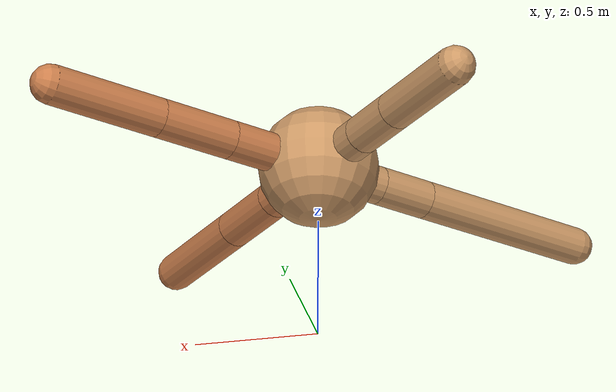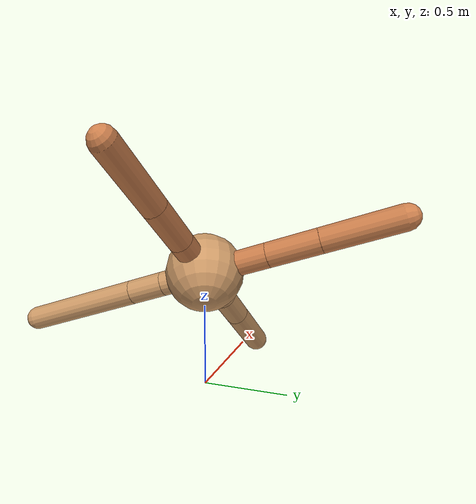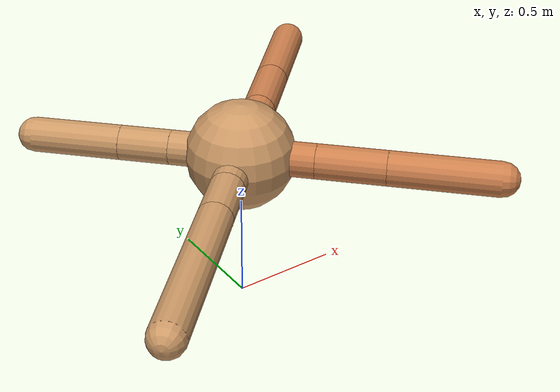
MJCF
<mujoco model="ant">
  <compiler angle="degree" coordinate="local" inertiafromgeom="true" />
  <option integrator="RK4" timestep="0.01" />
  <custom>
    <numeric data="0.0 0.0 0.55 1.0 0.0 0.0 0.0 0.0 1.0 0.0 -1.0 0.0 -1.0 0.0 1.0" name="init_qpos" />
  </custom>
  <default>
    <joint armature="1" damping="1" limited="true" />
    <geom conaffinity="0" condim="3" density="5.0" friction="1.5 0.1 0.1" margin="0.01" rgba="0.8 0.6 0.4 1" />
  </default>
  <worldbody>
    <body name="torso" pos="0 0 0.75">
      <geom name="torso_geom" pos="0 0 0" size="0.25" type="sphere" />

      <body name="front_left_leg" pos="0 0 0">
        <geom fromto="0.0 0.0 0.0 0.2986677477108287 0.2986677477108287 0.0" name="aux_1_geom" size="0.08" type="capsule" rgba=".8 .5 .3 1" />
        <body name="aux_1" pos="0.2986677477108287 0.2986677477108287 0.0">
          <joint axis="0 0 1" name="hip_1" pos="0.0 0.0 0.0" range="-40 40" type="hinge" />
          <geom fromto="0.0 0.0 0.0 0.23133125275517036 0.23133125275517036 0.0" name="left_leg_geom" size="0.08" type="capsule" rgba=".8 .5 .3 1" />
          <body pos="0.23133125275517036 0.23133125275517036 0.0" name="front_left_foot">
            <joint axis="-1 1 0" name="ankle_1" pos="0.0 0.0 0.0" range="30 100" type="hinge" />
            <geom fromto="0.0 0.0 0.0 0.33959258212739696 0.33959258212739696 0.0" name="left_ankle_geom" size="0.08" type="capsule" rgba=".8 .5 .3 1" />
          </body>
        </body>
      </body>
      <body name="front_right_leg" pos="0 0 0">
        <geom fromto="0.0 0.0 0.0 -0.22785066853829938 0.22785066853829938 0.0" name="aux_2_geom" size="0.08" type="capsule" />
        <body name="aux_2" pos="-0.22785066853829938 0.22785066853829938 0.0">
          <joint axis="0 0 1" name="hip_2" pos="0.0 0.0 0.0" range="-40 40" type="hinge" />
          <geom fromto="0.0 0.0 0.0 -0.16430478774644242 0.16430478774644242 0.0" name="right_leg_geom" size="0.08" type="capsule" />
          <body pos="-0.16430478774644242 0.16430478774644242 0.0" name="front_right_foot">
            <joint axis="1 1 0" name="ankle_2" pos="0.0 0.0 0.0" range="-100 -30" type="hinge" />
            <geom fromto="0.0 0.0 0.0 -0.2885105926016371 0.2885105926016371 0.0" name="right_ankle_geom" size="0.08" type="capsule" />
          </body>
        </body>
      </body>
      <body name="left_back_leg" pos="0 0 0">
        <geom fromto="0.0 0.0 0.0 -0.2063335944914095 -0.2063335944914095 0.0" name="aux_3_geom" size="0.08" type="capsule" />
        <body name="aux_3" pos="-0.2063335944914095 -0.2063335944914095 0.0">
          <joint axis="0 0 1" name="hip_3" pos="0.0 0.0 0.0" range="-40 40" type="hinge" />
          <geom fromto="0.0 0.0 0.0 -0.1648836929860753 -0.1648836929860753 0.0" name="back_leg_geom" size="0.08" type="capsule" />
          <body pos="-0.1648836929860753 -0.1648836929860753 0.0" name="left_back_foot">
            <joint axis="-1 1 0" name="ankle_3" pos="0.0 0.0 0.0" range="-100 -30" type="hinge" />
            <geom fromto="0.0 0.0 0.0 -0.5578662089636598 -0.5578662089636598 0.0" name="third_ankle_geom" size="0.08" type="capsule" />
          </body>
        </body>
      </body>
      <body name="right_back_leg" pos="0 0 0">
        <geom fromto="0.0 0.0 0.0 0.24066977150440982 -0.24066977150440982 0.0" name="aux_4_geom" size="0.08" type="capsule" rgba=".8 .5 .3 1" />
        <body name="aux_4" pos="0.24066977150440982 -0.24066977150440982 0.0">
          <joint axis="0 0 1" name="hip_4" pos="0.0 0.0 0.0" range="-40 40" type="hinge" />
          <geom fromto="0.0 0.0 0.0 0.22459389281861264 -0.22459389281861264 0.0" name="rightback_leg_geom" size="0.08" type="capsule" rgba=".8 .5 .3 1" />
          <body pos="0.22459389281861264 -0.22459389281861264 0.0" name="right_back_foot">
            <joint axis="1 1 0" name="ankle_4" pos="0.0 0.0 0.0" range="30 100" type="hinge" />
            <geom fromto="0.0 0.0 0.0 0.35208316536283635 -0.35208316536283635 0.0" name="fourth_ankle_geom" size="0.08" type="capsule" rgba=".8 .5 .3 1" />
          </body>
        </body>
      </body>
    </body>
  </worldbody>
  <actuator>
    <motor ctrllimited="true" ctrlrange="-1.0 1.0" joint="hip_4" gear="150" />
    <motor ctrllimited="true" ctrlrange="-1.0 1.0" joint="ankle_4" gear="150" />
    <motor ctrllimited="true" ctrlrange="-1.0 1.0" joint="hip_1" gear="150" />
    <motor ctrllimited="true" ctrlrange="-1.0 1.0" joint="ankle_1" gear="150" />
    <motor ctrllimited="true" ctrlrange="-1.0 1.0" joint="hip_2" gear="150" />
    <motor ctrllimited="true" ctrlrange="-1.0 1.0" joint="ankle_2" gear="150" />
    <motor ctrllimited="true" ctrlrange="-1.0 1.0" joint="hip_3" gear="150" />
    <motor ctrllimited="true" ctrlrange="-1.0 1.0" joint="ankle_3" gear="150" />
  </actuator>
</mujoco>
